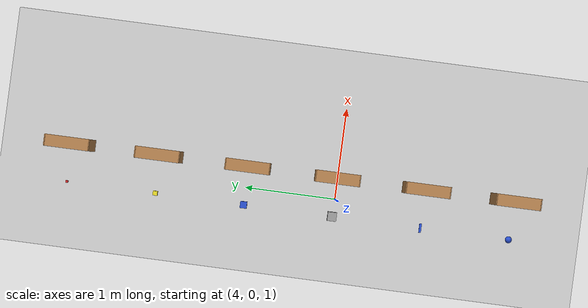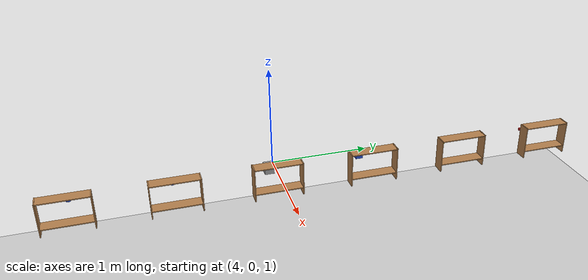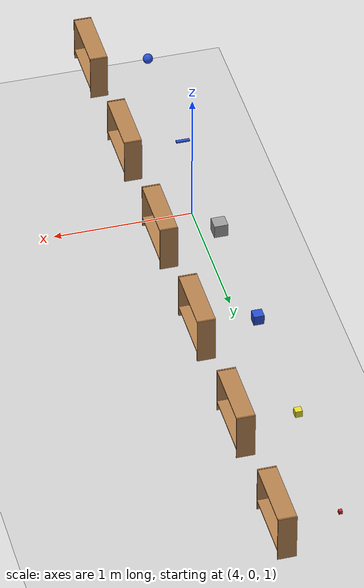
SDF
<sdf version="1.4">
 <world name="default">
  <include><uri>model://ground_plane</uri></include>
  <include><uri>model://sun</uri></include>
  <include><uri>model://shelf</uri><name>shelf1</name><pose>4.3 3 0.83 0 0 -1.57</pose></include>
  <include><uri>model://cube_s</uri><name>cube_s</name><pose>3.8 3 0.83 0 0 0</pose></include>
  <include><uri>model://shelf</uri><name>shelf2</name><pose>4.3 2 0.83 0 0 -1.57</pose></include>
  <include><uri>model://cube_m</uri><name>cube_m</name><pose>3.8 2 0.83 0 0 0</pose></include>
  <include><uri>model://shelf</uri><name>shelf3</name><pose>4.3 1 0.83 0 0 -1.57</pose></include>
  <include><uri>model://cube_l</uri><name>cube_l</name><pose>3.8 1 0.83 0 0 0</pose></include>
  <include><uri>model://shelf</uri><name>shelf4</name><pose>4.3 0 0.83 0 0 -1.57</pose></include>
  <include><uri>model://cube_xl</uri><name>cube_xl</name><pose>3.8 0 0.83 0 0 0</pose></include>
  <include><uri>model://shelf</uri><name>shelf5</name><pose>4.3 -1 0.83 0 0 -1.57</pose></include>
  <include><uri>model://stone</uri><name>stone</name><pose>3.8 -1 0.83 0 0 0</pose></include>
  <include><uri>model://shelf</uri><name>shelf5</name><pose>4.3 -2 0.83 0 0 -1.57</pose></include>
  <include><uri>model://ball</uri><name>ball</name><pose>3.8 -2 0.83 0 0 0</pose></include>
 </world>
</sdf>

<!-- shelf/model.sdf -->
<sdf version="1.4">
  <model name="shelf">
    <static>true</static>
    <link name="link">
      <inertial>
        <mass>1.0</mass>
      </inertial>

      <collision name="left_side">
        <pose>0.245 -0.065 0.1 0 0 0</pose>
        <geometry>
          <box>
            <size>0.01 0.13 0.355</size>
          </box>
        </geometry>
      </collision>
      <visual name="visual2">
        <pose>0.245 -0.065 0.1 0 0 0</pose>
        <geometry>
          <box>
            <size>0.01 0.13 0.355</size>
          </box>
        </geometry>
        <material>
          <script>
            <uri>file://media/materials/scripts/gazebo.material</uri>
            <name>Gazebo/Wood</name>
          </script>
        </material>
      </visual>

      <collision name="right_side">
        <pose>-0.245 -0.065 0.1 0 0 0</pose>
        <geometry>
          <box>
            <size>0.01 0.13 0.355</size>
          </box>
        </geometry>
      </collision>
      <visual name="visual3">
        <pose>-0.245 -0.065 0.1 0 0 0</pose>
        <geometry>
          <box>
            <size>0.01 0.13 0.355</size>
          </box>
        </geometry>
        <material>
          <script>
            <uri>file://media/materials/scripts/gazebo.material</uri>
            <name>Gazebo/Wood</name>
          </script>
        </material>
      </visual>

      <collision name="bottom">
        <pose>0 -0.065 0 0 0 0</pose>
        <geometry>
          <box>
            <size>0.48 0.13 0.01</size>
          </box>
        </geometry>
      </collision>
      <visual name="visual4">
        <pose>0 -0.065 0 0 0 0</pose>
        <geometry>
          <box>
            <size>0.48 0.13 0.01</size>
          </box>
        </geometry>
        <material>
          <script>
            <uri>file://media/materials/scripts/gazebo.material</uri>
            <name>Gazebo/Wood</name>
          </script>
        </material>
      </visual>

      <collision name="top">
        <pose>0 -0.065 0.27 0 0 0</pose>
        <geometry>
          <box>
            <size>0.48 0.13 0.01</size>
          </box>
        </geometry>
      </collision>
      <visual name="visual5">
        <pose>0 -0.065 0.27 0 0 0</pose>
        <geometry>
          <box>
            <size>0.48 0.13 0.01</size>
          </box>
        </geometry>
        <material>
          <script>
            <uri>file://media/materials/scripts/gazebo.material</uri>
            <name>Gazebo/Wood</name>
          </script>
        </material>
      </visual>
    </link>
  </model>
</sdf>

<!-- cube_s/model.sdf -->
<sdf version='1.4'>
  <model name="cube_s">
      <static>0</static>
      <link name='link'>
	    <pose>0 0 0 0 0 0</pose>
      <inertial>
        <mass>0.0073</mass>
        <inertia>
          <ixx>7.604166666666669e-07</ixx>
          <ixy>0</ixy>
          <ixz>0</ixz>
          <iyy>7.604166666666669e-07</iyy>
          <iyz>0</iyz>
          <izz>7.604166666666669e-07</izz>
        </inertia>
      </inertial>
      <collision name='collision'>
        <geometry>
          <box>
            <size>0.025 0.025 0.025</size>
          </box>
        </geometry>
        <surface>
          <friction>
            <ode>
              <mu>30.0</mu>
              <mu2>30.0</mu2>
            </ode>
          </friction>
          <contact>
            <ode>
              <kp>100000</kp>
              <kd>100</kd>
              <max_vel>100.0</max_vel>
              <min_depth>0.001</min_depth>
            </ode>
          </contact>
        </surface>
      </collision>
      <visual name='visual'>
        <geometry>
          <box>
            <size>0.025 0.025 0.025</size>
          </box>
        </geometry>
        <material>
          <script>
            <uri>file://media/materials/scripts/gazebo.material</uri>
            <name>Gazebo/Red</name>
          </script>
        </material>
      </visual>
      <velocity_decay>
        <linear>0.000000</linear>
        <angular>0.000000</angular>
      </velocity_decay>
      <self_collide>0</self_collide>
      <kinematic>0</kinematic>
      <gravity>1</gravity>
    </link>
  </model>
</sdf>

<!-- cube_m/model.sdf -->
<sdf version='1.4'>
  <model name="cube_m">
    <static>0</static>
    <link name='link'>
      <pose>0 0 0 0 0 0</pose>
      <inertial>
        <mass>0.25</mass>
        <inertia>
          <ixx>0.001</ixx>
          <ixy>0.000000</ixy>
          <ixz>0.000000</ixz>
          <iyy>0.001</iyy>
          <iyz>0.000000</iyz>
          <izz>0.001</izz>
        </inertia>
      </inertial>
      <collision name='collision'>
        <geometry>
          <box>
            <size>0.050 0.050 0.050</size>
          </box>
        </geometry>
        <surface>
          <friction>
            <ode>
              <mu>30.0</mu>
              <mu2>30.0</mu2>
            </ode>
          </friction>
          <contact>
            <ode>
              <kp>1000000.0</kp>
              <kd>100.0</kd>
              <max_vel>1.0</max_vel>
              <min_depth>0.002</min_depth>
            </ode>
          </contact>
        </surface>
      </collision>
      <visual name='visual'>
        <geometry>
          <box><size>0.050 0.050 0.050</size></box>
        </geometry>
        <material>
          <script>
            <uri>file://media/materials/scripts/gazebo.material</uri>
            <name>Gazebo/Yellow</name>
          </script>
        </material>
      </visual>
      <velocity_decay>
        <linear>0.000000</linear>
        <angular>0.000000</angular>
      </velocity_decay>
      <self_collide>0</self_collide>
      <kinematic>0</kinematic>
      <gravity>1</gravity>
    </link>
  </model>
</sdf>

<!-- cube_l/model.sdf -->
<sdf version='1.4'>
  <model name="cube_l">
      <static>0</static>
      <link name='link'>
	    <pose>0 0 0 0 0 0</pose>
      <inertial>
        <mass>0.2249</mass>
        <inertia>
          <ixx>0.00021084374999999999</ixx>
          <ixy>0</ixy>
          <ixz>0</ixz>
          <iyy>0.00021084374999999999</iyy>
          <iyz>0</iyz>
          <izz>0.00021084374999999999</izz>
        </inertia>
      </inertial>
      <collision name='collision'>
        <geometry>
          <box>
            <size>0.060 0.060 0.060</size>
          </box>
        </geometry>
        <surface>
          <friction>
            <ode>
              <mu>30.0</mu>
              <mu2>30.0</mu2>
            </ode>
          </friction>
          <contact>
            <ode>
              <kp>100000</kp>
              <kd>100</kd>
              <max_vel>100.0</max_vel>
              <min_depth>0.001</min_depth>
            </ode>
          </contact>
        </surface>
      </collision>
      <visual name="visual">
        <geometry>
          <box>
            <size>0.075 0.075 0.075</size>
          </box>
        </geometry>
        <material>
          <script>
            <uri>file://media/materials/scripts/gazebo.material</uri>
            <name>Gazebo/Blue</name>
          </script>
        </material>
      </visual>
      <velocity_decay>
        <linear>0.000000</linear>
        <angular>0.000000</angular>
      </velocity_decay>
      <self_collide>0</self_collide>
      <kinematic>0</kinematic>
      <gravity>1</gravity>
    </link>
  </model>
</sdf>

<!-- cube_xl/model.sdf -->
<sdf version='1.4'>
  <model name="cube_xl">
      <static>0</static>
      <link name='link'>
	    <pose>0 0 0 0 0 0</pose>
      <inertial>
        <mass>0.5167</mass>
        <inertia>
          <ixx>0.0008611666666666669</ixx>
          <ixy>0</ixy>
          <ixz>0</ixz>
          <iyy>0.0008611666666666669</iyy>
          <iyz>0</iyz>
          <izz>0.0008611666666666669</izz>
        </inertia>
      </inertial>
      <collision name='collision'>
        <geometry>
          <box>
            <size>0.1 0.1 0.1</size>
          </box>
        </geometry>
        <surface>
          <friction>
            <ode>
              <mu>30.0</mu>
              <mu2>30.0</mu2>
            </ode>
          </friction>
          <contact>
            <ode>
              <kp>100000</kp>
              <kd>100</kd>
              <max_vel>100.0</max_vel>
              <min_depth>0.001</min_depth>
            </ode>
          </contact>
        </surface>
      </collision>
      <visual name="visual">
        <geometry>
          <box>
            <size>0.1 0.1 0.1</size>
          </box>
        </geometry>
        <material>
          <script>
            <uri>file://media/materials/scripts/gazebo.material</uri>
            <name>Gazebo/Grey</name>
          </script>
        </material>
      </visual>
      <velocity_decay>
        <linear>0.000000</linear>
        <angular>0.000000</angular>
      </velocity_decay>
      <self_collide>0</self_collide>
      <kinematic>0</kinematic>
      <gravity>1</gravity>
    </link>
  </model>
</sdf>

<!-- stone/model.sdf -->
<sdf version='1.4'>
  <model name="stone">
      <static>0</static>
      <link name='link'>
	    <pose>0 0 0 0 0 0</pose>
      <inertial>
        <mass>0.0125</mass>
        <inertia>
          <ixx>7.552083333333335e-07</ixx>
          <ixy>0</ixy>
          <ixz>0</ixz>
          <iyy>1.0520833333333334e-05</iyy>
          <iyz>0</iyz>
          <izz>1.1067708333333336e-05</izz>
        </inertia>
      </inertial>
      <collision name='collision'>
        <geometry>
          <box><size>0.100 0.025 0.010</size></box>
        </geometry>
        <surface>
          <friction>
            <ode>
              <mu>30.0</mu>
              <mu2>30.0</mu2>
            </ode>
          </friction>
          <contact>
            <ode>
              <kp>100000</kp>
              <kd>1</kd>
              <max_vel>1.0</max_vel>
              <min_depth>0.001</min_depth>
            </ode>
          </contact>
        </surface>
      </collision>
      <visual name='visual'>
        <geometry>
          <box><size>0.100 0.025 0.010</size></box>
        </geometry>
        <material>
          <script>
            <uri>file://media/materials/scripts/gazebo.material</uri>
            <name>Gazebo/Blue</name>
          </script>
        </material>
      </visual>
      <velocity_decay>
        <linear>0.000000</linear>
        <angular>0.000000</angular>
      </velocity_decay>
      <self_collide>0</self_collide>
      <kinematic>0</kinematic>
      <gravity>1</gravity>
    </link>
  </model>
</sdf>

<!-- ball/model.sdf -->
<sdf version='1.4'>
  <model name="ball">
    <link name="link">
      <pose>0 0 0 0 0 0</pose>
      <inertial>
        <mass>0.02</mass>
        <inertia>
          <ixx>3.96e-09</ixx>
          <ixy>0</ixy>
          <ixz>0</ixz>
          <iyy>3.96e-09</iyy>
          <iyz>0</iyz>
          <izz>3.96e-09</izz>
        </inertia>
      </inertial>

      <collision name="collision">
        <geometry>
          <sphere>
            <radius>0.0375</radius>
          </sphere>
        </geometry>
        <surface>
          <friction>
            <ode>
              <mu>30.0</mu>
              <mu2>30.0</mu2>
            </ode>
          </friction>
          <contact>
            <ode>
              <kp>100000</kp>
              <kd>100</kd>
              <max_vel>100.0</max_vel>
              <min_depth>0.001</min_depth>
            </ode>
          </contact>
        </surface>
      </collision>

      <visual name="visual">
        <geometry>
          <sphere>
            <radius>0.0375</radius>
          </sphere>
        </geometry>
        <material>
          <script>
            <uri>file://media/materials/scripts/gazebo.material</uri>
            <name>Gazebo/Blue</name>
          </script>
        </material>
      </visual>

      <!-- approximate rolling friction -->
      <velocity_decay>
        <linear>0.00</linear>
        <angular>0.005</angular>
      </velocity_decay>
    </link>
  </model>
</sdf>
